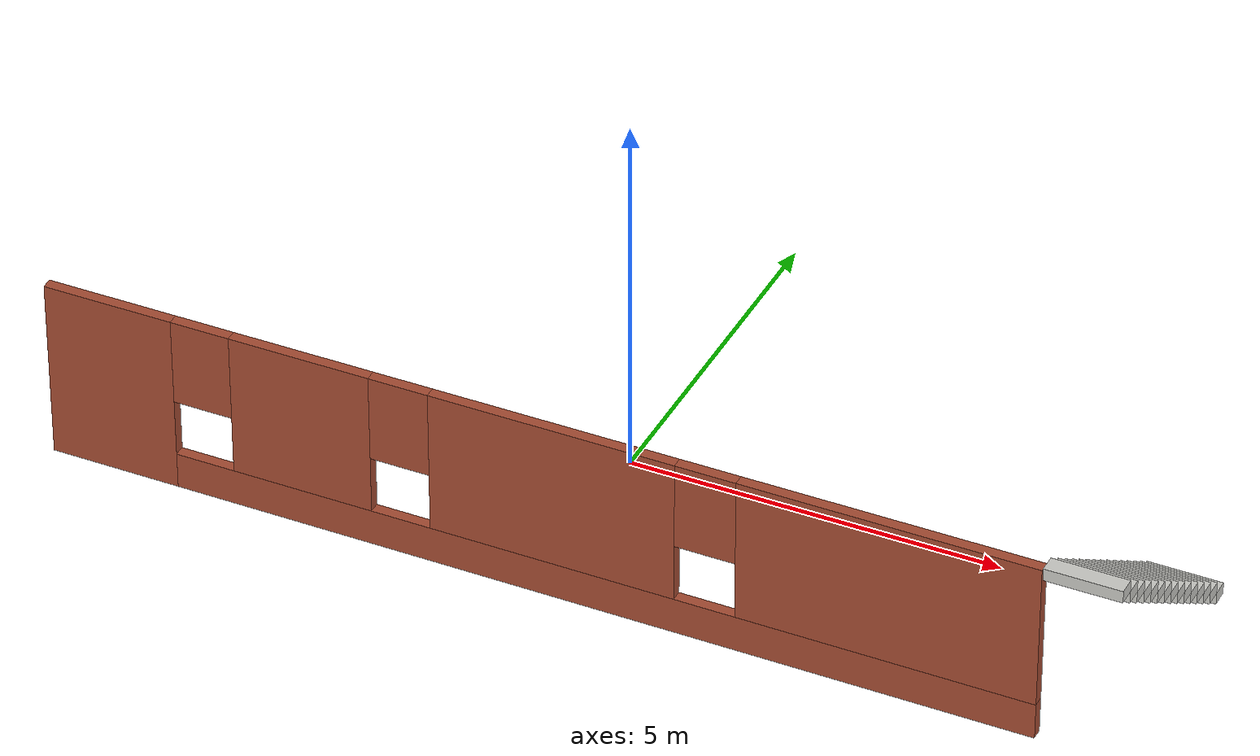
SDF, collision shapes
<sdf version="1.7">
 <model name="house1">
  <link name="Stairs_1">
   <visual name="Stairs_1_Visual_0">
    <pose>7.11919 0.575699 0.083333 0 -0 0</pose>
    <geometry><box><size>1 0.233333 0.166667</size></box></geometry>
    <material>
     <script><uri>file://media/materials/scripts/gazebo.material</uri><name>Gazebo/CeilingTiled</name></script>
     <ambient>1 1 1 1</ambient>
     <shader type="pixel"/>
    </material>
    <meta><layer>0</layer></meta>
   </visual>
   <visual name="Stairs_1_Visual_1">
    <pose>7.11919 0.342365 0.25 0 -0 0</pose>
    <geometry><box><size>1 0.233333 0.166667</size></box></geometry>
    <material>
     <script><uri>file://media/materials/scripts/gazebo.material</uri><name>Gazebo/CeilingTiled</name></script>
     <ambient>1 1 1 1</ambient>
     <shader type="pixel"/>
    </material>
    <meta><layer>0</layer></meta>
   </visual>
   <visual name="Stairs_1_Visual_2">
    <pose>7.11919 0.109032 0.416667 0 -0 0</pose>
    <geometry><box><size>1 0.233333 0.166667</size></box></geometry>
    <material>
     <script><uri>file://media/materials/scripts/gazebo.material</uri><name>Gazebo/CeilingTiled</name></script>
     <ambient>1 1 1 1</ambient>
     <shader type="pixel"/>
    </material>
    <meta><layer>0</layer></meta>
   </visual>
   <visual name="Stairs_1_Visual_3">
    <pose>7.11919 -0.124301 0.583333 0 -0 0</pose>
    <geometry><box><size>1 0.233333 0.166667</size></box></geometry>
    <material>
     <script><uri>file://media/materials/scripts/gazebo.material</uri><name>Gazebo/CeilingTiled</name></script>
     <ambient>1 1 1 1</ambient>
     <shader type="pixel"/>
    </material>
    <meta><layer>0</layer></meta>
   </visual>
   <visual name="Stairs_1_Visual_4">
    <pose>7.11919 -0.357634 0.75 0 -0 0</pose>
    <geometry><box><size>1 0.233333 0.166667</size></box></geometry>
    <material>
     <script><uri>file://media/materials/scripts/gazebo.material</uri><name>Gazebo/CeilingTiled</name></script>
     <ambient>1 1 1 1</ambient>
     <shader type="pixel"/>
    </material>
    <meta><layer>0</layer></meta>
   </visual>
   <visual name="Stairs_1_Visual_5">
    <pose>7.11919 -0.590968 0.916667 0 -0 0</pose>
    <geometry><box><size>1 0.233333 0.166667</size></box></geometry>
    <material>
     <script><uri>file://media/materials/scripts/gazebo.material</uri><name>Gazebo/CeilingTiled</name></script>
     <ambient>1 1 1 1</ambient>
     <shader type="pixel"/>
    </material>
    <meta><layer>0</layer></meta>
   </visual>
   <visual name="Stairs_1_Visual_6">
    <pose>7.11919 -0.824301 1.08333 0 -0 0</pose>
    <geometry><box><size>1 0.233333 0.166667</size></box></geometry>
    <material>
     <script><uri>file://media/materials/scripts/gazebo.material</uri><name>Gazebo/CeilingTiled</name></script>
     <ambient>1 1 1 1</ambient>
     <shader type="pixel"/>
    </material>
    <meta><layer>0</layer></meta>
   </visual>
   <visual name="Stairs_1_Visual_7">
    <pose>7.11919 -1.05763 1.25 0 -0 0</pose>
    <geometry><box><size>1 0.233333 0.166667</size></box></geometry>
    <material>
     <script><uri>file://media/materials/scripts/gazebo.material</uri><name>Gazebo/CeilingTiled</name></script>
     <ambient>1 1 1 1</ambient>
     <shader type="pixel"/>
    </material>
    <meta><layer>0</layer></meta>
   </visual>
   <visual name="Stairs_1_Visual_8">
    <pose>7.11919 -1.29097 1.41667 0 -0 0</pose>
    <geometry><box><size>1 0.233333 0.166667</size></box></geometry>
    <material>
     <script><uri>file://media/materials/scripts/gazebo.material</uri><name>Gazebo/CeilingTiled</name></script>
     <ambient>1 1 1 1</ambient>
     <shader type="pixel"/>
    </material>
    <meta><layer>0</layer></meta>
   </visual>
   <visual name="Stairs_1_Visual_9">
    <pose>7.11919 -1.5243 1.58333 0 -0 0</pose>
    <geometry><box><size>1 0.233333 0.166667</size></box></geometry>
    <material>
     <script><uri>file://media/materials/scripts/gazebo.material</uri><name>Gazebo/CeilingTiled</name></script>
     <ambient>1 1 1 1</ambient>
     <shader type="pixel"/>
    </material>
    <meta><layer>0</layer></meta>
   </visual>
   <visual name="Stairs_1_Visual_10">
    <pose>7.11919 -1.75763 1.75 0 -0 0</pose>
    <geometry><box><size>1 0.233333 0.166667</size></box></geometry>
    <material>
     <script><uri>file://media/materials/scripts/gazebo.material</uri><name>Gazebo/CeilingTiled</name></script>
     <ambient>1 1 1 1</ambient>
     <shader type="pixel"/>
    </material>
    <meta><layer>0</layer></meta>
   </visual>
   <visual name="Stairs_1_Visual_11">
    <pose>7.11919 -1.99097 1.91667 0 -0 0</pose>
    <geometry><box><size>1 0.233333 0.166667</size></box></geometry>
    <material>
     <script><uri>file://media/materials/scripts/gazebo.material</uri><name>Gazebo/CeilingTiled</name></script>
     <ambient>1 1 1 1</ambient>
     <shader type="pixel"/>
    </material>
    <meta><layer>0</layer></meta>
   </visual>
   <visual name="Stairs_1_Visual_12">
    <pose>7.11919 -2.2243 2.08333 0 -0 0</pose>
    <geometry><box><size>1 0.233333 0.166667</size></box></geometry>
    <material>
     <script><uri>file://media/materials/scripts/gazebo.material</uri><name>Gazebo/CeilingTiled</name></script>
     <ambient>1 1 1 1</ambient>
     <shader type="pixel"/>
    </material>
    <meta><layer>0</layer></meta>
   </visual>
   <visual name="Stairs_1_Visual_13">
    <pose>7.11919 -2.45763 2.25 0 -0 0</pose>
    <geometry><box><size>1 0.233333 0.166667</size></box></geometry>
    <material>
     <script><uri>file://media/materials/scripts/gazebo.material</uri><name>Gazebo/CeilingTiled</name></script>
     <ambient>1 1 1 1</ambient>
     <shader type="pixel"/>
    </material>
    <meta><layer>0</layer></meta>
   </visual>
   <visual name="Stairs_1_Visual_14">
    <pose>7.11919 -2.69097 2.41667 0 -0 0</pose>
    <geometry><box><size>1 0.233333 0.166667</size></box></geometry>
    <material>
     <script><uri>file://media/materials/scripts/gazebo.material</uri><name>Gazebo/CeilingTiled</name></script>
     <ambient>1 1 1 1</ambient>
     <shader type="pixel"/>
    </material>
    <meta><layer>0</layer></meta>
   </visual>
   <collision name="Stairs_1_Collision_2">
    <pose>7.11919 0.109032 0.416667 0 -0 0</pose>
    <geometry><box><size>1 0.233333 0.166667</size></box></geometry>
    <surface>
     <friction>
      <ode><mu>1</mu><mu2>1</mu2><fdir1>0 0 0</fdir1><slip1>0</slip1><slip2>0</slip2></ode>
      <torsional>
       <coefficient>1</coefficient>
       <patch_radius>0</patch_radius>
       <surface_radius>0</surface_radius>
       <use_patch_radius>1</use_patch_radius>
       <ode><slip>0</slip></ode>
      </torsional>
     </friction>
     <bounce><restitution_coefficient>0</restitution_coefficient><threshold>1e+06</threshold></bounce>
     <contact>
      <collide_without_contact>0</collide_without_contact>
      <collide_without_contact_bitmask>1</collide_without_contact_bitmask>
      <collide_bitmask>1</collide_bitmask>
      <ode>
       <soft_cfm>0</soft_cfm>
       <soft_erp>0.2</soft_erp>
       <kp>1e+13</kp>
       <kd>1</kd>
       <max_vel>0.01</max_vel>
       <min_depth>0</min_depth>
      </ode>
      <bullet>
       <split_impulse>1</split_impulse>
       <split_impulse_penetration_threshold>-0.01</split_impulse_penetration_threshold>
       <soft_cfm>0</soft_cfm>
       <soft_erp>0.2</soft_erp>
       <kp>1e+13</kp>
       <kd>1</kd>
      </bullet>
     </contact>
    </surface>
   </collision>
   <collision name="Stairs_1_Collision_0">
    <pose>7.11919 0.575699 0.083333 0 -0 0</pose>
    <geometry><box><size>1 0.233333 0.166667</size></box></geometry>
    <surface>
     <friction>
      <ode><mu>1</mu><mu2>1</mu2><fdir1>0 0 0</fdir1><slip1>0</slip1><slip2>0</slip2></ode>
      <torsional>
       <coefficient>1</coefficient>
       <patch_radius>0</patch_radius>
       <surface_radius>0</surface_radius>
       <use_patch_radius>1</use_patch_radius>
       <ode><slip>0</slip></ode>
      </torsional>
     </friction>
     <bounce><restitution_coefficient>0</restitution_coefficient><threshold>1e+06</threshold></bounce>
     <contact>
      <collide_without_contact>0</collide_without_contact>
      <collide_without_contact_bitmask>1</collide_without_contact_bitmask>
      <collide_bitmask>1</collide_bitmask>
      <ode>
       <soft_cfm>0</soft_cfm>
       <soft_erp>0.2</soft_erp>
       <kp>1e+13</kp>
       <kd>1</kd>
       <max_vel>0.01</max_vel>
       <min_depth>0</min_depth>
      </ode>
      <bullet>
       <split_impulse>1</split_impulse>
       <split_impulse_penetration_threshold>-0.01</split_impulse_penetration_threshold>
       <soft_cfm>0</soft_cfm>
       <soft_erp>0.2</soft_erp>
       <kp>1e+13</kp>
       <kd>1</kd>
      </bullet>
     </contact>
    </surface>
   </collision>
   <collision name="Stairs_1_Collision_1">
    <pose>7.11919 0.342365 0.25 0 -0 0</pose>
    <geometry><box><size>1 0.233333 0.166667</size></box></geometry>
    <surface>
     <friction>
      <ode><mu>1</mu><mu2>1</mu2><fdir1>0 0 0</fdir1><slip1>0</slip1><slip2>0</slip2></ode>
      <torsional>
       <coefficient>1</coefficient>
       <patch_radius>0</patch_radius>
       <surface_radius>0</surface_radius>
       <use_patch_radius>1</use_patch_radius>
       <ode><slip>0</slip></ode>
      </torsional>
     </friction>
     <bounce><restitution_coefficient>0</restitution_coefficient><threshold>1e+06</threshold></bounce>
     <contact>
      <collide_without_contact>0</collide_without_contact>
      <collide_without_contact_bitmask>1</collide_without_contact_bitmask>
      <collide_bitmask>1</collide_bitmask>
      <ode>
       <soft_cfm>0</soft_cfm>
       <soft_erp>0.2</soft_erp>
       <kp>1e+13</kp>
       <kd>1</kd>
       <max_vel>0.01</max_vel>
       <min_depth>0</min_depth>
      </ode>
      <bullet>
       <split_impulse>1</split_impulse>
       <split_impulse_penetration_threshold>-0.01</split_impulse_penetration_threshold>
       <soft_cfm>0</soft_cfm>
       <soft_erp>0.2</soft_erp>
       <kp>1e+13</kp>
       <kd>1</kd>
      </bullet>
     </contact>
    </surface>
   </collision>
   <collision name="Stairs_1_Collision_3">
    <pose>7.11919 -0.124301 0.583333 0 -0 0</pose>
    <geometry><box><size>1 0.233333 0.166667</size></box></geometry>
    <surface>
     <friction>
      <ode><mu>1</mu><mu2>1</mu2><fdir1>0 0 0</fdir1><slip1>0</slip1><slip2>0</slip2></ode>
      <torsional>
       <coefficient>1</coefficient>
       <patch_radius>0</patch_radius>
       <surface_radius>0</surface_radius>
       <use_patch_radius>1</use_patch_radius>
       <ode><slip>0</slip></ode>
      </torsional>
     </friction>
     <bounce><restitution_coefficient>0</restitution_coefficient><threshold>1e+06</threshold></bounce>
     <contact>
      <collide_without_contact>0</collide_without_contact>
      <collide_without_contact_bitmask>1</collide_without_contact_bitmask>
      <collide_bitmask>1</collide_bitmask>
      <ode>
       <soft_cfm>0</soft_cfm>
       <soft_erp>0.2</soft_erp>
       <kp>1e+13</kp>
       <kd>1</kd>
       <max_vel>0.01</max_vel>
       <min_depth>0</min_depth>
      </ode>
      <bullet>
       <split_impulse>1</split_impulse>
       <split_impulse_penetration_threshold>-0.01</split_impulse_penetration_threshold>
       <soft_cfm>0</soft_cfm>
       <soft_erp>0.2</soft_erp>
       <kp>1e+13</kp>
       <kd>1</kd>
      </bullet>
     </contact>
    </surface>
   </collision>
   <collision name="Stairs_1_Collision_4">
    <pose>7.11919 -0.357634 0.75 0 -0 0</pose>
    <geometry><box><size>1 0.233333 0.166667</size></box></geometry>
    <surface>
     <friction>
      <ode><mu>1</mu><mu2>1</mu2><fdir1>0 0 0</fdir1><slip1>0</slip1><slip2>0</slip2></ode>
      <torsional>
       <coefficient>1</coefficient>
       <patch_radius>0</patch_radius>
       <surface_radius>0</surface_radius>
       <use_patch_radius>1</use_patch_radius>
       <ode><slip>0</slip></ode>
      </torsional>
     </friction>
     <bounce><restitution_coefficient>0</restitution_coefficient><threshold>1e+06</threshold></bounce>
     <contact>
      <collide_without_contact>0</collide_without_contact>
      <collide_without_contact_bitmask>1</collide_without_contact_bitmask>
      <collide_bitmask>1</collide_bitmask>
      <ode>
       <soft_cfm>0</soft_cfm>
       <soft_erp>0.2</soft_erp>
       <kp>1e+13</kp>
       <kd>1</kd>
       <max_vel>0.01</max_vel>
       <min_depth>0</min_depth>
      </ode>
      <bullet>
       <split_impulse>1</split_impulse>
       <split_impulse_penetration_threshold>-0.01</split_impulse_penetration_threshold>
       <soft_cfm>0</soft_cfm>
       <soft_erp>0.2</soft_erp>
       <kp>1e+13</kp>
       <kd>1</kd>
      </bullet>
     </contact>
    </surface>
   </collision>
   <collision name="Stairs_1_Collision_5">
    <pose>7.11919 -0.590968 0.916667 0 -0 0</pose>
    <geometry><box><size>1 0.233333 0.166667</size></box></geometry>
    <surface>
     <friction>
      <ode><mu>1</mu><mu2>1</mu2><fdir1>0 0 0</fdir1><slip1>0</slip1><slip2>0</slip2></ode>
      <torsional>
       <coefficient>1</coefficient>
       <patch_radius>0</patch_radius>
       <surface_radius>0</surface_radius>
       <use_patch_radius>1</use_patch_radius>
       <ode><slip>0</slip></ode>
      </torsional>
     </friction>
     <bounce><restitution_coefficient>0</restitution_coefficient><threshold>1e+06</threshold></bounce>
     <contact>
      <collide_without_contact>0</collide_without_contact>
      <collide_without_contact_bitmask>1</collide_without_contact_bitmask>
      <collide_bitmask>1</collide_bitmask>
      <ode>
       <soft_cfm>0</soft_cfm>
       <soft_erp>0.2</soft_erp>
       <kp>1e+13</kp>
       <kd>1</kd>
       <max_vel>0.01</max_vel>
       <min_depth>0</min_depth>
      </ode>
      <bullet>
       <split_impulse>1</split_impulse>
       <split_impulse_penetration_threshold>-0.01</split_impulse_penetration_threshold>
       <soft_cfm>0</soft_cfm>
       <soft_erp>0.2</soft_erp>
       <kp>1e+13</kp>
       <kd>1</kd>
      </bullet>
     </contact>
    </surface>
   </collision>
   <collision name="Stairs_1_Collision_6">
    <pose>7.11919 -0.824301 1.08333 0 -0 0</pose>
    <geometry><box><size>1 0.233333 0.166667</size></box></geometry>
    <surface>
     <friction>
      <ode><mu>1</mu><mu2>1</mu2><fdir1>0 0 0</fdir1><slip1>0</slip1><slip2>0</slip2></ode>
      <torsional>
       <coefficient>1</coefficient>
       <patch_radius>0</patch_radius>
       <surface_radius>0</surface_radius>
       <use_patch_radius>1</use_patch_radius>
       <ode><slip>0</slip></ode>
      </torsional>
     </friction>
     <bounce><restitution_coefficient>0</restitution_coefficient><threshold>1e+06</threshold></bounce>
     <contact>
      <collide_without_contact>0</collide_without_contact>
      <collide_without_contact_bitmask>1</collide_without_contact_bitmask>
      <collide_bitmask>1</collide_bitmask>
      <ode>
       <soft_cfm>0</soft_cfm>
       <soft_erp>0.2</soft_erp>
       <kp>1e+13</kp>
       <kd>1</kd>
       <max_vel>0.01</max_vel>
       <min_depth>0</min_depth>
      </ode>
      <bullet>
       <split_impulse>1</split_impulse>
       <split_impulse_penetration_threshold>-0.01</split_impulse_penetration_threshold>
       <soft_cfm>0</soft_cfm>
       <soft_erp>0.2</soft_erp>
       <kp>1e+13</kp>
       <kd>1</kd>
      </bullet>
     </contact>
    </surface>
   </collision>
   <collision name="Stairs_1_Collision_7">
    <pose>7.11919 -1.05763 1.25 0 -0 0</pose>
    <geometry><box><size>1 0.233333 0.166667</size></box></geometry>
    <surface>
     <friction>
      <ode><mu>1</mu><mu2>1</mu2><fdir1>0 0 0</fdir1><slip1>0</slip1><slip2>0</slip2></ode>
      <torsional>
       <coefficient>1</coefficient>
       <patch_radius>0</patch_radius>
       <surface_radius>0</surface_radius>
       <use_patch_radius>1</use_patch_radius>
       <ode><slip>0</slip></ode>
      </torsional>
     </friction>
     <bounce><restitution_coefficient>0</restitution_coefficient><threshold>1e+06</threshold></bounce>
     <contact>
      <collide_without_contact>0</collide_without_contact>
      <collide_without_contact_bitmask>1</collide_without_contact_bitmask>
      <collide_bitmask>1</collide_bitmask>
      <ode>
       <soft_cfm>0</soft_cfm>
       <soft_erp>0.2</soft_erp>
       <kp>1e+13</kp>
       <kd>1</kd>
       <max_vel>0.01</max_vel>
       <min_depth>0</min_depth>
      </ode>
      <bullet>
       <split_impulse>1</split_impulse>
       <split_impulse_penetration_threshold>-0.01</split_impulse_penetration_threshold>
       <soft_cfm>0</soft_cfm>
       <soft_erp>0.2</soft_erp>
       <kp>1e+13</kp>
       <kd>1</kd>
      </bullet>
     </contact>
    </surface>
   </collision>
   <collision name="Stairs_1_Collision_8">
    <pose>7.11919 -1.29097 1.41667 0 -0 0</pose>
    <geometry><box><size>1 0.233333 0.166667</size></box></geometry>
    <surface>
     <friction>
      <ode><mu>1</mu><mu2>1</mu2><fdir1>0 0 0</fdir1><slip1>0</slip1><slip2>0</slip2></ode>
      <torsional>
       <coefficient>1</coefficient>
       <patch_radius>0</patch_radius>
       <surface_radius>0</surface_radius>
       <use_patch_radius>1</use_patch_radius>
       <ode><slip>0</slip></ode>
      </torsional>
     </friction>
     <bounce><restitution_coefficient>0</restitution_coefficient><threshold>1e+06</threshold></bounce>
     <contact>
      <collide_without_contact>0</collide_without_contact>
      <collide_without_contact_bitmask>1</collide_without_contact_bitmask>
      <collide_bitmask>1</collide_bitmask>
      <ode>
       <soft_cfm>0</soft_cfm>
       <soft_erp>0.2</soft_erp>
       <kp>1e+13</kp>
       <kd>1</kd>
       <max_vel>0.01</max_vel>
       <min_depth>0</min_depth>
      </ode>
      <bullet>
       <split_impulse>1</split_impulse>
       <split_impulse_penetration_threshold>-0.01</split_impulse_penetration_threshold>
       <soft_cfm>0</soft_cfm>
       <soft_erp>0.2</soft_erp>
       <kp>1e+13</kp>
       <kd>1</kd>
      </bullet>
     </contact>
    </surface>
   </collision>
   <collision name="Stairs_1_Collision_9">
    <pose>7.11919 -1.5243 1.58333 0 -0 0</pose>
    <geometry><box><size>1 0.233333 0.166667</size></box></geometry>
    <surface>
     <friction>
      <ode><mu>1</mu><mu2>1</mu2><fdir1>0 0 0</fdir1><slip1>0</slip1><slip2>0</slip2></ode>
      <torsional>
       <coefficient>1</coefficient>
       <patch_radius>0</patch_radius>
       <surface_radius>0</surface_radius>
       <use_patch_radius>1</use_patch_radius>
       <ode><slip>0</slip></ode>
      </torsional>
     </friction>
     <bounce><restitution_coefficient>0</restitution_coefficient><threshold>1e+06</threshold></bounce>
     <contact>
      <collide_without_contact>0</collide_without_contact>
      <collide_without_contact_bitmask>1</collide_without_contact_bitmask>
      <collide_bitmask>1</collide_bitmask>
      <ode>
       <soft_cfm>0</soft_cfm>
       <soft_erp>0.2</soft_erp>
       <kp>1e+13</kp>
       <kd>1</kd>
       <max_vel>0.01</max_vel>
       <min_depth>0</min_depth>
      </ode>
      <bullet>
       <split_impulse>1</split_impulse>
       <split_impulse_penetration_threshold>-0.01</split_impulse_penetration_threshold>
       <soft_cfm>0</soft_cfm>
       <soft_erp>0.2</soft_erp>
       <kp>1e+13</kp>
       <kd>1</kd>
      </bullet>
     </contact>
    </surface>
   </collision>
   <collision name="Stairs_1_Collision_10">
    <pose>7.11919 -1.75763 1.75 0 -0 0</pose>
    <geometry><box><size>1 0.233333 0.166667</size></box></geometry>
    <surface>
     <friction>
      <ode><mu>1</mu><mu2>1</mu2><fdir1>0 0 0</fdir1><slip1>0</slip1><slip2>0</slip2></ode>
      <torsional>
       <coefficient>1</coefficient>
       <patch_radius>0</patch_radius>
       <surface_radius>0</surface_radius>
       <use_patch_radius>1</use_patch_radius>
       <ode><slip>0</slip></ode>
      </torsional>
     </friction>
     <bounce><restitution_coefficient>0</restitution_coefficient><threshold>1e+06</threshold></bounce>
     <contact>
      <collide_without_contact>0</collide_without_contact>
      <collide_without_contact_bitmask>1</collide_without_contact_bitmask>
      <collide_bitmask>1</collide_bitmask>
      <ode>
       <soft_cfm>0</soft_cfm>
       <soft_erp>0.2</soft_erp>
       <kp>1e+13</kp>
       <kd>1</kd>
       <max_vel>0.01</max_vel>
       <min_depth>0</min_depth>
      </ode>
      <bullet>
       <split_impulse>1</split_impulse>
       <split_impulse_penetration_threshold>-0.01</split_impulse_penetration_threshold>
       <soft_cfm>0</soft_cfm>
       <soft_erp>0.2</soft_erp>
       <kp>1e+13</kp>
       <kd>1</kd>
      </bullet>
     </contact>
    </surface>
   </collision>
   <collision name="Stairs_1_Collision_11">
    <pose>7.11919 -1.99097 1.91667 0 -0 0</pose>
    <geometry><box><size>1 0.233333 0.166667</size></box></geometry>
    <surface>
     <friction>
      <ode><mu>1</mu><mu2>1</mu2><fdir1>0 0 0</fdir1><slip1>0</slip1><slip2>0</slip2></ode>
      <torsional>
       <coefficient>1</coefficient>
       <patch_radius>0</patch_radius>
       <surface_radius>0</surface_radius>
       <use_patch_radius>1</use_patch_radius>
       <ode><slip>0</slip></ode>
      </torsional>
     </friction>
     <bounce><restitution_coefficient>0</restitution_coefficient><threshold>1e+06</threshold></bounce>
     <contact>
      <collide_without_contact>0</collide_without_contact>
      <collide_without_contact_bitmask>1</collide_without_contact_bitmask>
      <collide_bitmask>1</collide_bitmask>
      <ode>
       <soft_cfm>0</soft_cfm>
       <soft_erp>0.2</soft_erp>
       <kp>1e+13</kp>
       <kd>1</kd>
       <max_vel>0.01</max_vel>
       <min_depth>0</min_depth>
      </ode>
      <bullet>
       <split_impulse>1</split_impulse>
       <split_impulse_penetration_threshold>-0.01</split_impulse_penetration_threshold>
       <soft_cfm>0</soft_cfm>
       <soft_erp>0.2</soft_erp>
       <kp>1e+13</kp>
       <kd>1</kd>
      </bullet>
     </contact>
    </surface>
   </collision>
   <collision name="Stairs_1_Collision_12">
    <pose>7.11919 -2.2243 2.08333 0 -0 0</pose>
    <geometry><box><size>1 0.233333 0.166667</size></box></geometry>
    <surface>
     <friction>
      <ode><mu>1</mu><mu2>1</mu2><fdir1>0 0 0</fdir1><slip1>0</slip1><slip2>0</slip2></ode>
      <torsional>
       <coefficient>1</coefficient>
       <patch_radius>0</patch_radius>
       <surface_radius>0</surface_radius>
       <use_patch_radius>1</use_patch_radius>
       <ode><slip>0</slip></ode>
      </torsional>
     </friction>
     <bounce><restitution_coefficient>0</restitution_coefficient><threshold>1e+06</threshold></bounce>
     <contact>
      <collide_without_contact>0</collide_without_contact>
      <collide_without_contact_bitmask>1</collide_without_contact_bitmask>
      <collide_bitmask>1</collide_bitmask>
      <ode>
       <soft_cfm>0</soft_cfm>
       <soft_erp>0.2</soft_erp>
       <kp>1e+13</kp>
       <kd>1</kd>
       <max_vel>0.01</max_vel>
       <min_depth>0</min_depth>
      </ode>
      <bullet>
       <split_impulse>1</split_impulse>
       <split_impulse_penetration_threshold>-0.01</split_impulse_penetration_threshold>
       <soft_cfm>0</soft_cfm>
       <soft_erp>0.2</soft_erp>
       <kp>1e+13</kp>
       <kd>1</kd>
      </bullet>
     </contact>
    </surface>
   </collision>
   <collision name="Stairs_1_Collision_13">
    <pose>7.11919 -2.45763 2.25 0 -0 0</pose>
    <geometry><box><size>1 0.233333 0.166667</size></box></geometry>
    <surface>
     <friction>
      <ode><mu>1</mu><mu2>1</mu2><fdir1>0 0 0</fdir1><slip1>0</slip1><slip2>0</slip2></ode>
      <torsional>
       <coefficient>1</coefficient>
       <patch_radius>0</patch_radius>
       <surface_radius>0</surface_radius>
       <use_patch_radius>1</use_patch_radius>
       <ode><slip>0</slip></ode>
      </torsional>
     </friction>
     <bounce><restitution_coefficient>0</restitution_coefficient><threshold>1e+06</threshold></bounce>
     <contact>
      <collide_without_contact>0</collide_without_contact>
      <collide_without_contact_bitmask>1</collide_without_contact_bitmask>
      <collide_bitmask>1</collide_bitmask>
      <ode>
       <soft_cfm>0</soft_cfm>
       <soft_erp>0.2</soft_erp>
       <kp>1e+13</kp>
       <kd>1</kd>
       <max_vel>0.01</max_vel>
       <min_depth>0</min_depth>
      </ode>
      <bullet>
       <split_impulse>1</split_impulse>
       <split_impulse_penetration_threshold>-0.01</split_impulse_penetration_threshold>
       <soft_cfm>0</soft_cfm>
       <soft_erp>0.2</soft_erp>
       <kp>1e+13</kp>
       <kd>1</kd>
      </bullet>
     </contact>
    </surface>
   </collision>
   <collision name="Stairs_1_Collision_14">
    <pose>7.11919 -2.69097 2.41667 0 -0 0</pose>
    <geometry><box><size>1 0.233333 0.166667</size></box></geometry>
    <surface>
     <friction>
      <ode><mu>1</mu><mu2>1</mu2><fdir1>0 0 0</fdir1><slip1>0</slip1><slip2>0</slip2></ode>
      <torsional>
       <coefficient>1</coefficient>
       <patch_radius>0</patch_radius>
       <surface_radius>0</surface_radius>
       <use_patch_radius>1</use_patch_radius>
       <ode><slip>0</slip></ode>
      </torsional>
     </friction>
     <bounce><restitution_coefficient>0</restitution_coefficient><threshold>1e+06</threshold></bounce>
     <contact>
      <collide_without_contact>0</collide_without_contact>
      <collide_without_contact_bitmask>1</collide_without_contact_bitmask>
      <collide_bitmask>1</collide_bitmask>
      <ode>
       <soft_cfm>0</soft_cfm>
       <soft_erp>0.2</soft_erp>
       <kp>1e+13</kp>
       <kd>1</kd>
       <max_vel>0.01</max_vel>
       <min_depth>0</min_depth>
      </ode>
      <bullet>
       <split_impulse>1</split_impulse>
       <split_impulse_penetration_threshold>-0.01</split_impulse_penetration_threshold>
       <soft_cfm>0</soft_cfm>
       <soft_erp>0.2</soft_erp>
       <kp>1e+13</kp>
       <kd>1</kd>
      </bullet>
     </contact>
    </surface>
   </collision>
  </link>
  <link name="Wall_1">
   <pose>0.005807 -2.76875 0 0 -0 0</pose>
   <visual name="Wall_1_Visual_0">
    <pose>-5.73525 0 1.25 0 -0 0</pose>
    <geometry><box><size>1.7565 0.15 2.5</size></box></geometry>
    <material>
     <script><uri>file://media/materials/scripts/gazebo.material</uri><name>Gazebo/Bricks</name></script>
     <ambient>1 1 1 1</ambient>
     <shader type="pixel"/>
    </material>
    <meta><layer>0</layer></meta>
   </visual>
   <visual name="Wall_1_Visual_1">
    <pose>0.87825 0 0.25 0 -0 0</pose>
    <geometry><box><size>11.4705 0.15 0.5</size></box></geometry>
    <material>
     <script><uri>file://media/materials/scripts/gazebo.material</uri><name>Gazebo/Bricks</name></script>
     <ambient>1 1 1 1</ambient>
     <shader type="pixel"/>
    </material>
    <meta><layer>0</layer></meta>
   </visual>
   <visual name="Wall_1_Visual_2">
    <pose>-3.10575 0 1.5 0 -0 0</pose>
    <geometry><box><size>1.9025 0.15 2</size></box></geometry>
    <material>
     <script><uri>file://media/materials/scripts/gazebo.material</uri><name>Gazebo/Bricks</name></script>
     <ambient>1 1 1 1</ambient>
     <shader type="pixel"/>
    </material>
    <meta><layer>0</layer></meta>
   </visual>
   <visual name="Wall_1_Visual_3">
    <pose>0.281 0 1.5 0 -0 0</pose>
    <geometry><box><size>3.271 0.15 2</size></box></geometry>
    <material>
     <script><uri>file://media/materials/scripts/gazebo.material</uri><name>Gazebo/Bricks</name></script>
     <ambient>1 1 1 1</ambient>
     <shader type="pixel"/>
    </material>
    <meta><layer>0</layer></meta>
   </visual>
   <visual name="Wall_1_Visual_4">
    <pose>4.665 0 1.5 0 -0 0</pose>
    <geometry><box><size>3.897 0.15 2</size></box></geometry>
    <material>
     <script><uri>file://media/materials/scripts/gazebo.material</uri><name>Gazebo/Bricks</name></script>
     <ambient>1 1 1 1</ambient>
     <shader type="pixel"/>
    </material>
    <meta><layer>0</layer></meta>
   </visual>
   <visual name="Wall_1_Visual_5">
    <pose>-4.457 0 1.9 0 -0 0</pose>
    <geometry><box><size>0.8 0.15 1.2</size></box></geometry>
    <material>
     <script><uri>file://media/materials/scripts/gazebo.material</uri><name>Gazebo/Bricks</name></script>
     <ambient>1 1 1 1</ambient>
     <shader type="pixel"/>
    </material>
    <meta><layer>0</layer></meta>
   </visual>
   <visual name="Wall_1_Visual_6">
    <pose>-1.7545 0 1.9 0 -0 0</pose>
    <geometry><box><size>0.8 0.15 1.2</size></box></geometry>
    <material>
     <script><uri>file://media/materials/scripts/gazebo.material</uri><name>Gazebo/Bricks</name></script>
     <ambient>1 1 1 1</ambient>
     <shader type="pixel"/>
    </material>
    <meta><layer>0</layer></meta>
   </visual>
   <visual name="Wall_1_Visual_7">
    <pose>2.3165 0 1.9 0 -0 0</pose>
    <geometry><box><size>0.8 0.15 1.2</size></box></geometry>
    <material>
     <script><uri>file://media/materials/scripts/gazebo.material</uri><name>Gazebo/Bricks</name></script>
     <ambient>1 1 1 1</ambient>
     <shader type="pixel"/>
    </material>
    <meta><layer>0</layer></meta>
   </visual>
   <collision name="Wall_1_Collision_0">
    <pose>-5.73525 0 1.25 0 -0 0</pose>
    <geometry><box><size>1.7565 0.15 2.5</size></box></geometry>
    <surface>
     <friction>
      <ode><mu>1</mu><mu2>1</mu2><fdir1>0 0 0</fdir1><slip1>0</slip1><slip2>0</slip2></ode>
      <torsional>
       <coefficient>1</coefficient>
       <patch_radius>0</patch_radius>
       <surface_radius>0</surface_radius>
       <use_patch_radius>1</use_patch_radius>
       <ode><slip>0</slip></ode>
      </torsional>
     </friction>
     <bounce><restitution_coefficient>0</restitution_coefficient><threshold>1e+06</threshold></bounce>
     <contact>
      <collide_without_contact>0</collide_without_contact>
      <collide_without_contact_bitmask>1</collide_without_contact_bitmask>
      <collide_bitmask>1</collide_bitmask>
      <ode>
       <soft_cfm>0</soft_cfm>
       <soft_erp>0.2</soft_erp>
       <kp>1e+13</kp>
       <kd>1</kd>
       <max_vel>0.01</max_vel>
       <min_depth>0</min_depth>
      </ode>
      <bullet>
       <split_impulse>1</split_impulse>
       <split_impulse_penetration_threshold>-0.01</split_impulse_penetration_threshold>
       <soft_cfm>0</soft_cfm>
       <soft_erp>0.2</soft_erp>
       <kp>1e+13</kp>
       <kd>1</kd>
      </bullet>
     </contact>
    </surface>
   </collision>
   <collision name="Wall_1_Collision_2">
    <pose>-3.10575 0 1.5 0 -0 0</pose>
    <geometry><box><size>1.9025 0.15 2</size></box></geometry>
    <surface>
     <friction>
      <ode><mu>1</mu><mu2>1</mu2><fdir1>0 0 0</fdir1><slip1>0</slip1><slip2>0</slip2></ode>
      <torsional>
       <coefficient>1</coefficient>
       <patch_radius>0</patch_radius>
       <surface_radius>0</surface_radius>
       <use_patch_radius>1</use_patch_radius>
       <ode><slip>0</slip></ode>
      </torsional>
     </friction>
     <bounce><restitution_coefficient>0</restitution_coefficient><threshold>1e+06</threshold></bounce>
     <contact>
      <collide_without_contact>0</collide_without_contact>
      <collide_without_contact_bitmask>1</collide_without_contact_bitmask>
      <collide_bitmask>1</collide_bitmask>
      <ode>
       <soft_cfm>0</soft_cfm>
       <soft_erp>0.2</soft_erp>
       <kp>1e+13</kp>
       <kd>1</kd>
       <max_vel>0.01</max_vel>
       <min_depth>0</min_depth>
      </ode>
      <bullet>
       <split_impulse>1</split_impulse>
       <split_impulse_penetration_threshold>-0.01</split_impulse_penetration_threshold>
       <soft_cfm>0</soft_cfm>
       <soft_erp>0.2</soft_erp>
       <kp>1e+13</kp>
       <kd>1</kd>
      </bullet>
     </contact>
    </surface>
   </collision>
   <collision name="Wall_1_Collision_1">
    <pose>0.87825 0 0.25 0 -0 0</pose>
    <geometry><box><size>11.4705 0.15 0.5</size></box></geometry>
    <surface>
     <friction>
      <ode><mu>1</mu><mu2>1</mu2><fdir1>0 0 0</fdir1><slip1>0</slip1><slip2>0</slip2></ode>
      <torsional>
       <coefficient>1</coefficient>
       <patch_radius>0</patch_radius>
       <surface_radius>0</surface_radius>
       <use_patch_radius>1</use_patch_radius>
       <ode><slip>0</slip></ode>
      </torsional>
     </friction>
     <bounce><restitution_coefficient>0</restitution_coefficient><threshold>1e+06</threshold></bounce>
     <contact>
      <collide_without_contact>0</collide_without_contact>
      <collide_without_contact_bitmask>1</collide_without_contact_bitmask>
      <collide_bitmask>1</collide_bitmask>
      <ode>
       <soft_cfm>0</soft_cfm>
       <soft_erp>0.2</soft_erp>
       <kp>1e+13</kp>
       <kd>1</kd>
       <max_vel>0.01</max_vel>
       <min_depth>0</min_depth>
      </ode>
      <bullet>
       <split_impulse>1</split_impulse>
       <split_impulse_penetration_threshold>-0.01</split_impulse_penetration_threshold>
       <soft_cfm>0</soft_cfm>
       <soft_erp>0.2</soft_erp>
       <kp>1e+13</kp>
       <kd>1</kd>
      </bullet>
     </contact>
    </surface>
   </collision>
   <collision name="Wall_1_Collision_3">
    <pose>0.281 0 1.5 0 -0 0</pose>
    <geometry><box><size>3.271 0.15 2</size></box></geometry>
    <surface>
     <friction>
      <ode><mu>1</mu><mu2>1</mu2><fdir1>0 0 0</fdir1><slip1>0</slip1><slip2>0</slip2></ode>
      <torsional>
       <coefficient>1</coefficient>
       <patch_radius>0</patch_radius>
       <surface_radius>0</surface_radius>
       <use_patch_radius>1</use_patch_radius>
       <ode><slip>0</slip></ode>
      </torsional>
     </friction>
     <bounce><restitution_coefficient>0</restitution_coefficient><threshold>1e+06</threshold></bounce>
     <contact>
      <collide_without_contact>0</collide_without_contact>
      <collide_without_contact_bitmask>1</collide_without_contact_bitmask>
      <collide_bitmask>1</collide_bitmask>
      <ode>
       <soft_cfm>0</soft_cfm>
       <soft_erp>0.2</soft_erp>
       <kp>1e+13</kp>
       <kd>1</kd>
       <max_vel>0.01</max_vel>
       <min_depth>0</min_depth>
      </ode>
      <bullet>
       <split_impulse>1</split_impulse>
       <split_impulse_penetration_threshold>-0.01</split_impulse_penetration_threshold>
       <soft_cfm>0</soft_cfm>
       <soft_erp>0.2</soft_erp>
       <kp>1e+13</kp>
       <kd>1</kd>
      </bullet>
     </contact>
    </surface>
   </collision>
   <collision name="Wall_1_Collision_4">
    <pose>4.665 0 1.5 0 -0 0</pose>
    <geometry><box><size>3.897 0.15 2</size></box></geometry>
    <surface>
     <friction>
      <ode><mu>1</mu><mu2>1</mu2><fdir1>0 0 0</fdir1><slip1>0</slip1><slip2>0</slip2></ode>
      <torsional>
       <coefficient>1</coefficient>
       <patch_radius>0</patch_radius>
       <surface_radius>0</surface_radius>
       <use_patch_radius>1</use_patch_radius>
       <ode><slip>0</slip></ode>
      </torsional>
     </friction>
     <bounce><restitution_coefficient>0</restitution_coefficient><threshold>1e+06</threshold></bounce>
     <contact>
      <collide_without_contact>0</collide_without_contact>
      <collide_without_contact_bitmask>1</collide_without_contact_bitmask>
      <collide_bitmask>1</collide_bitmask>
      <ode>
       <soft_cfm>0</soft_cfm>
       <soft_erp>0.2</soft_erp>
       <kp>1e+13</kp>
       <kd>1</kd>
       <max_vel>0.01</max_vel>
       <min_depth>0</min_depth>
      </ode>
      <bullet>
       <split_impulse>1</split_impulse>
       <split_impulse_penetration_threshold>-0.01</split_impulse_penetration_threshold>
       <soft_cfm>0</soft_cfm>
       <soft_erp>0.2</soft_erp>
       <kp>1e+13</kp>
       <kd>1</kd>
      </bullet>
     </contact>
    </surface>
   </collision>
   <collision name="Wall_1_Collision_5">
    <pose>-4.457 0 1.9 0 -0 0</pose>
    <geometry><box><size>0.8 0.15 1.2</size></box></geometry>
    <surface>
     <friction>
      <ode><mu>1</mu><mu2>1</mu2><fdir1>0 0 0</fdir1><slip1>0</slip1><slip2>0</slip2></ode>
      <torsional>
       <coefficient>1</coefficient>
       <patch_radius>0</patch_radius>
       <surface_radius>0</surface_radius>
       <use_patch_radius>1</use_patch_radius>
       <ode><slip>0</slip></ode>
      </torsional>
     </friction>
     <bounce><restitution_coefficient>0</restitution_coefficient><threshold>1e+06</threshold></bounce>
     <contact>
      <collide_without_contact>0</collide_without_contact>
      <collide_without_contact_bitmask>1</collide_without_contact_bitmask>
      <collide_bitmask>1</collide_bitmask>
      <ode>
       <soft_cfm>0</soft_cfm>
       <soft_erp>0.2</soft_erp>
       <kp>1e+13</kp>
       <kd>1</kd>
       <max_vel>0.01</max_vel>
       <min_depth>0</min_depth>
      </ode>
      <bullet>
       <split_impulse>1</split_impulse>
       <split_impulse_penetration_threshold>-0.01</split_impulse_penetration_threshold>
       <soft_cfm>0</soft_cfm>
       <soft_erp>0.2</soft_erp>
       <kp>1e+13</kp>
       <kd>1</kd>
      </bullet>
     </contact>
    </surface>
   </collision>
   <collision name="Wall_1_Collision_6">
    <pose>-1.7545 0 1.9 0 -0 0</pose>
    <geometry><box><size>0.8 0.15 1.2</size></box></geometry>
    <surface>
     <friction>
      <ode><mu>1</mu><mu2>1</mu2><fdir1>0 0 0</fdir1><slip1>0</slip1><slip2>0</slip2></ode>
      <torsional>
       <coefficient>1</coefficient>
       <patch_radius>0</patch_radius>
       <surface_radius>0</surface_radius>
       <use_patch_radius>1</use_patch_radius>
       <ode><slip>0</slip></ode>
      </torsional>
     </friction>
     <bounce><restitution_coefficient>0</restitution_coefficient><threshold>1e+06</threshold></bounce>
     <contact>
      <collide_without_contact>0</collide_without_contact>
      <collide_without_contact_bitmask>1</collide_without_contact_bitmask>
      <collide_bitmask>1</collide_bitmask>
      <ode>
       <soft_cfm>0</soft_cfm>
       <soft_erp>0.2</soft_erp>
       <kp>1e+13</kp>
       <kd>1</kd>
       <max_vel>0.01</max_vel>
       <min_depth>0</min_depth>
      </ode>
      <bullet>
       <split_impulse>1</split_impulse>
       <split_impulse_penetration_threshold>-0.01</split_impulse_penetration_threshold>
       <soft_cfm>0</soft_cfm>
       <soft_erp>0.2</soft_erp>
       <kp>1e+13</kp>
       <kd>1</kd>
      </bullet>
     </contact>
    </surface>
   </collision>
   <collision name="Wall_1_Collision_7">
    <pose>2.3165 0 1.9 0 -0 0</pose>
    <geometry><box><size>0.8 0.15 1.2</size></box></geometry>
    <surface>
     <friction>
      <ode><mu>1</mu><mu2>1</mu2><fdir1>0 0 0</fdir1><slip1>0</slip1><slip2>0</slip2></ode>
      <torsional>
       <coefficient>1</coefficient>
       <patch_radius>0</patch_radius>
       <surface_radius>0</surface_radius>
       <use_patch_radius>1</use_patch_radius>
       <ode><slip>0</slip></ode>
      </torsional>
     </friction>
     <bounce><restitution_coefficient>0</restitution_coefficient><threshold>1e+06</threshold></bounce>
     <contact>
      <collide_without_contact>0</collide_without_contact>
      <collide_without_contact_bitmask>1</collide_without_contact_bitmask>
      <collide_bitmask>1</collide_bitmask>
      <ode>
       <soft_cfm>0</soft_cfm>
       <soft_erp>0.2</soft_erp>
       <kp>1e+13</kp>
       <kd>1</kd>
       <max_vel>0.01</max_vel>
       <min_depth>0</min_depth>
      </ode>
      <bullet>
       <split_impulse>1</split_impulse>
       <split_impulse_penetration_threshold>-0.01</split_impulse_penetration_threshold>
       <soft_cfm>0</soft_cfm>
       <soft_erp>0.2</soft_erp>
       <kp>1e+13</kp>
       <kd>1</kd>
      </bullet>
     </contact>
    </surface>
   </collision>
  </link>
  <static>1</static>
 </model>
</sdf>
